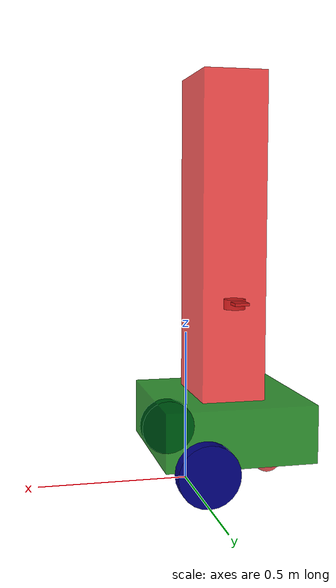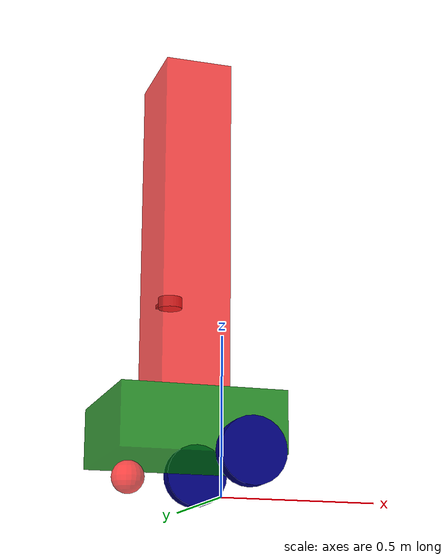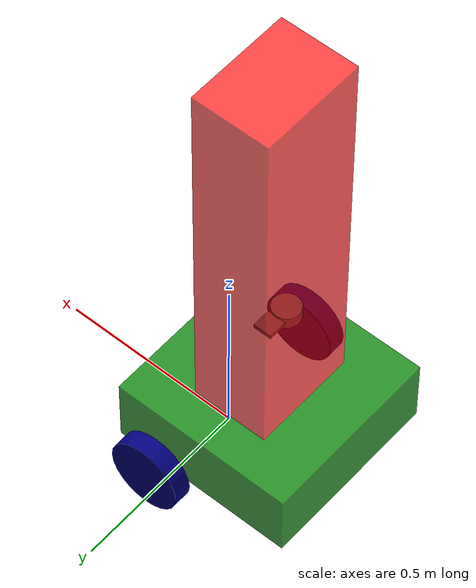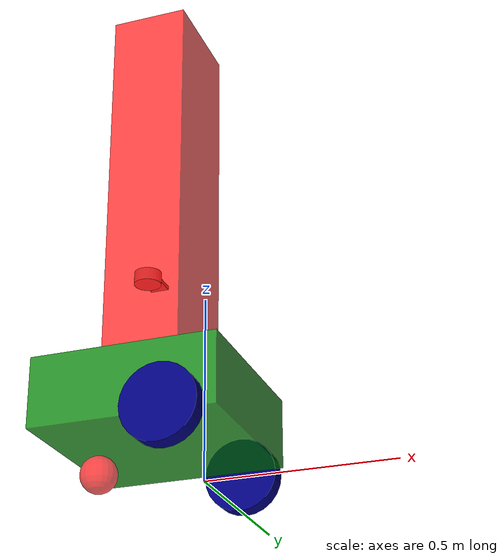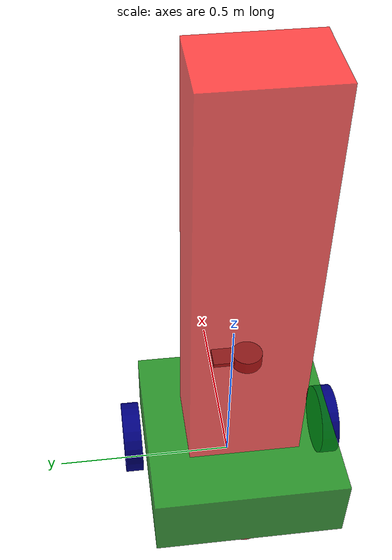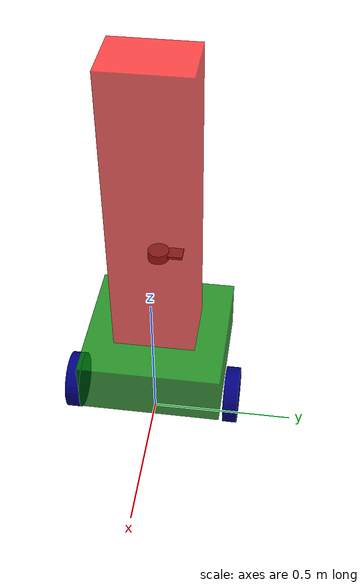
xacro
<?xml version="1.0"?>
<robot name="my_robot" xmlns:xacro="http://www.ros.org/wiki/xacro">
  <xacro:arg name="is_ignition" default="false"/>
  <xacro:arg name="is_sim" default="false"/>
  <xacro:arg name="drive_mode" default="2"/>
  <xacro:arg name="can_port" default="/dev/usbcan"/>
  <xacro:arg name="left_command_sign" default="-1"/>
  <xacro:arg name="right_command_sign" default="1"/>
  <xacro:arg name="left_feedback_sign" default="-1"/>
  <xacro:arg name="right_feedback_sign" default="1"/>

  <xacro:include filename="$(find carrierbot_description)/urdf/common_properties.xacro" />
  <xacro:include filename="$(find carrierbot_description)/urdf/mobile_base.xacro" />
  <xacro:include filename="$(find carrierbot_description)/urdf/mobile_base_gazebo.xacro" />
  <xacro:include filename="$(find carrierbot_description)/urdf/sensors.xacro" />

  <ros2_control name="RobotSystem" type="system">
    <hardware>
      <plugin>carrierbot_guidance_test::CarrierbotInterfaceTest</plugin>
      <param name="port">$(arg can_port)</param>
      <param name="baudrate">2000000</param>
      <param name="drive_mode">$(arg drive_mode)</param>
      <param name="poll_period">0.05</param>
      <param name="left_command_sign">$(arg left_command_sign)</param>
      <param name="right_command_sign">$(arg right_command_sign)</param>
      <param name="left_feedback_sign">$(arg left_feedback_sign)</param>
      <param name="right_feedback_sign">$(arg right_feedback_sign)</param>
    </hardware>

    <joint name="base_right_wheel_joint">
      <command_interface name="velocity">
        <param name="min">-15.0</param>
        <param name="max">15.0</param>
      </command_interface>
      <state_interface name="position"/>
      <state_interface name="velocity"/>
    </joint>

    <joint name="base_left_wheel_joint">
      <command_interface name="velocity">
        <param name="min">-15.0</param>
        <param name="max">15.0</param>
      </command_interface>
      <state_interface name="position"/>
      <state_interface name="velocity"/>
    </joint>
  </ros2_control>
</robot>

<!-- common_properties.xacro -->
<robot xmlns:xacro="http://www.ros.org/wiki/xacro">
 <!-- Define color -->
  <material name="green">
    <color rgba="0 0.5 0 0.8" />
  </material>
  <material name="blue">
    <color rgba="0 0 0.5 1" />
  </material>
  <material name="grey">
    <color rgba="0.5 0.5 0.5 1" />
  </material>
  <material name="red">
    <color rgba="1 0 0 0.7" />
  </material>
  <material name="dark">
    <color rgba="0.5 0.5 0.5 1" />
  </material>
  <!--Define inetial-->
  <xacro:macro name="box_inertia" params="m l w h xyz rpy">
    <inertial>
      <origin xyz="${xyz}" rpy="${rpy}" />
      <mass value="${m}" />
      <inertia ixx="${(m/12)*(h*h + l*l)}" ixy="0" ixz="0"
               iyy="${(m/12)*(w*w + l*l)}" iyz="0"
               izz="${(m/12)*(h*h + w*w)}" />
    </inertial>
  </xacro:macro>

  <xacro:macro name="cylinder_inertia" params="m h r xyz rpy">
    <inertial>
      <origin xyz="${xyz}" rpy="${rpy}" />
      <mass value="${m}" />
      <inertia ixx="${(m/12)*(3*r*r + h*h)}" ixy="0" ixz="0"
               iyy="${(m/12)*(3*r*r + h*h)}" iyz="0"
               izz="${(m/2)*r*r}" />
    </inertial>
  </xacro:macro>

  <xacro:macro name="shpere_inertia" params="m r xyz rpy">
    <inertial>
      <origin xyz="${xyz}" rpy="${rpy}" />
      <mass value="${m}" />
      <inertia ixx="${(2/5)*m*r*r}" ixy="0" ixz="0"
               iyy="${(2/5)*m*r*r}" iyz="0"
               izz="${(2/5)*m*r*r}" />
    </inertial>
  </xacro:macro>

</robot>

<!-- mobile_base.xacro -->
<robot xmlns:xacro="http://www.ros.org/wiki/xacro">

    <!--Dinamic
    var using xacro-->
    <xacro:property name="base_length" value="0.5" />
    <xacro:property name="base_width" value="0.5" />
    <xacro:property name="base_height" value="0.19" />
    <!-- v1 (robot_fablab) wheel geometry -->
    <xacro:property name="wheel_radius" value="0.1" />
    <xacro:property name="wheel_length" value="0.05" />
    <xacro:property name="wheel_separation" value="0.57" />
    <xacro:property name="upper_base_length" value="0.21" />
    <xacro:property name="upper_base_width" value="0.29" />
    <xacro:property name="upper_base_height" value="1.064"/>

    <!-- Define links -->
    <link name="base_footprint" />

    <link name="base_link">
        <visual>
            <geometry>
                <box size="${base_length} ${base_width} ${base_height}" />
            </geometry>
            <origin xyz="${-base_length / 4.0} 0 ${base_height/2.0}" rpy="0 0 0" />
            <material name="green" />
        </visual>

        <collision>
            <geometry>
                <box size="${base_length} ${base_width} ${base_height}" />
            </geometry>
            <origin xyz="0 0 ${base_height/2.0}" rpy="0 0 0" />
            <material name="green" />
        </collision>

        <xacro:box_inertia m="5.0" l="${base_length}" w="${base_width}" h="${base_height}"
            xyz="0 0 ${base_height/2.0}" rpy="0 0 0" />
    </link>

    <link name="upper_base_link">
        <visual>
            <geometry>
                <box size="${upper_base_length} ${upper_base_width} ${upper_base_height}" />
            </geometry>
            <origin xyz="0 0 0" rpy="0 0 0" />
            <material name="red" />
        </visual>

        <collision>
            <geometry>
                <box size="${upper_base_length} ${upper_base_width} ${upper_base_height}" />
            </geometry>
            <origin xyz="0 0 0" rpy="0 0 0" />
        </collision>

        <xacro:box_inertia m="5.0" l="${upper_base_length}" w="${upper_base_width}" h="${upper_base_height}"
            xyz="0 0 ${base_height + upper_base_height / 2.0}" rpy="0 0 0" />
    </link>
    <!--Function
    with xacro-->
    <xacro:macro name="wheel_link" params="prefix">
        <link name="${prefix}_wheel_link">
            <visual>
                <geometry>
                    <cylinder radius="${wheel_radius}" length="${wheel_length}" />
                </geometry>
                <origin xyz="0 0 0" rpy="${pi/2.0} 0 0" />
                <material name="blue" />
            </visual>

            <collision>
                <geometry>
                    <cylinder radius="${wheel_radius}" length="${wheel_length}" />
                </geometry>
                <origin xyz="0 0 0" rpy="${pi/2.0} 0 0" />
            </collision>
            <xacro:cylinder_inertia m="1.0" h="${wheel_length}" r="${wheel_radius}"
                xyz="0 0 0" rpy="${pi/2.0} 0 0" />
        </link>
    </xacro:macro>

    <!-- Use the macro to create wheel links -->
    <xacro:wheel_link prefix="right" />
    <xacro:wheel_link prefix="left" />

    <link name="caster_wheel_link">
        <visual>
            <geometry>
                <sphere radius="${wheel_radius / 2.0}" />
            </geometry>
            <origin xyz="0 0 0" rpy="0 0 0" />
            <material name="red" />
        </visual>
        <collision>
            <geometry>
                <sphere radius="${wheel_radius / 2.0}" />
            </geometry>
            <origin xyz="0 0 0" rpy="0 0 0" />
        </collision>
        <xacro:shpere_inertia m="5.0" r="${wheel_radius / 2.0}"
            xyz="0 0 0" rpy="0 0 0" />
    </link>

    <!-- Define joints -->
    <joint name="base_joint" type="fixed">
        <parent link="base_footprint" />
        <child link="base_link" />
        <origin xyz="0 0 ${wheel_radius}" rpy="0 0 0" />
    </joint>

    <joint name="base_right_wheel_joint" type="continuous">
        <parent link="base_link" />
        <child link="right_wheel_link" />
        <origin xyz="0 ${-wheel_separation / 2.0} 0" rpy="0 0 0" />
        <axis xyz="0 1 0" />
    </joint>

    <joint name="base_left_wheel_joint" type="continuous">
        <parent link="base_link" />
        <child link="left_wheel_link" />
        <origin xyz="0 ${wheel_separation / 2.0} 0" rpy="0 0 0" />
        <axis xyz="0 1 0" />
    </joint>

    <joint name="base_caster_wheel_joint" type="fixed">
        <parent link="base_link" />
        <child link="caster_wheel_link" />
        <origin xyz="${-base_length / 4.0 - base_length / 3.0} 0 ${-wheel_radius / 2.0}" rpy="0 0 0" />
        <axis xyz="0 1 0" />
    </joint>

    <joint name="upper_base_joint" type="fixed">
        <parent link="base_link" />
        <child link="upper_base_link" />
        <origin xyz="${-base_length / 4.0} 0 ${base_height + upper_base_height / 2.0}" rpy="0 0 0" />
    </joint>

</robot>

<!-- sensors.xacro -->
<robot xmlns:xacro="http://www.ros.org/wiki/xacro">
    <xacro:property name="lidar_height" value="0.037" />
    <xacro:property name="lidar_radius" value="0.0345" />

    <!-- Include lidar -->
    <link name="laser">
        <visual>
            <geometry>
                <cylinder radius="${lidar_height}" length="${lidar_radius}" />
            </geometry>
            <origin xyz="0 0 ${lidar_height/2 - 0.026}" rpy="0 0 0" />
            <material name="grey" />
        </visual>
        <collision>
            <geometry>
                <cylinder radius="${lidar_height}" length="${lidar_radius}" />
            </geometry>
            <origin xyz="0 0 ${lidar_height/4}" rpy="0 0 0" />
            <material name="grey" />
        </collision>
    </link>

    <!-- Include IMU -->
    <link name="imu">
        <visual>
            <geometry>
                <box size="0.05 0.05 0.01" />
            </geometry>
            <origin xyz="0 0 0" rpy="0 0 0" />
            <material name="grey" />
        </visual>
        <collision>
            <geometry>
                <box size="0.05 0.05 0.01" />
            </geometry>
            <origin xyz="0 0 0" rpy="0 0 0" />
            <material name="grey" />
        </collision>
    </link>

    <joint name="laser_joint" type="fixed">
        <parent link="base_link" />
        <child link="laser" />
        <origin xyz="-0.17 0 ${0.6 - wheel_radius}" rpy="0 0 ${pi}" />
    </joint>

    <joint name="imu_joint" type="fixed">
        <parent link="base_link" />
        <child link="imu" />
        <origin xyz="-0.17 0.06 ${0.6 - wheel_radius}" rpy="0 0 0" />
    </joint>

    <!-- Gazebo Sim sensor. ros_gz_bridge exposes /scan to ROS 2. -->
    <xacro:if value="$(arg is_ignition)">
        <gazebo reference="laser">
            <sensor name="laser" type="gpu_lidar">
                <pose>0 0 0 0 0 0</pose>
                <topic>/scan</topic>
                <visualize>true</visualize>
                <update_rate>10.0</update_rate>
                <ray>
                    <scan>
                        <horizontal>
                            <samples>720</samples>
                            <resolution>1</resolution>
                            <min_angle>-3.14</min_angle>
                            <max_angle>3.14</max_angle>
                        </horizontal>
                    </scan>
                    <range>
                        <min>0.5</min>
                        <max>18.0</max>
                        <resolution>0.01</resolution>
                    </range>
                </ray>
                <always_on>true</always_on>
            </sensor>
        </gazebo>
    </xacro:if>

    <!-- Gazebo Classic fallback. -->
    <xacro:unless value="$(arg is_ignition)">
        <gazebo reference="laser">
            <sensor name="laser" type="ray">
                <pose>0 0 0 0 0 0</pose>
                <visualize>true</visualize>
                <update_rate>10.0</update_rate>
                <ray>
                    <scan>
                        <horizontal>
                            <sample>720</sample>
                            <resolution>1</resolution>
                            <min_angle>-3.14</min_angle>
                            <max_angle>3.14</max_angle>
                        </horizontal>
                    </scan>
                    <range>
                        <min>0.5</min>
                        <max>18.0</max>
                        <resolution>1</resolution>
                    </range>
                </ray>
                <plugin name="laser_controller" filename="libgazebo_ros_ray_sensor.so">
                    <ros>
                        <argument>~/out:=scan</argument>
                    </ros>
                    <output_type>sensor_msgs/LaserScan</output_type>
                    <frame_name>laser</frame_name>
                </plugin>
            </sensor>
        </gazebo>
    </xacro:unless>

</robot>
